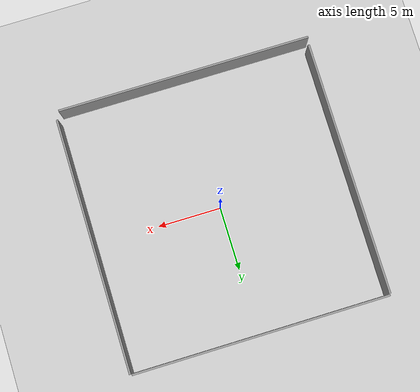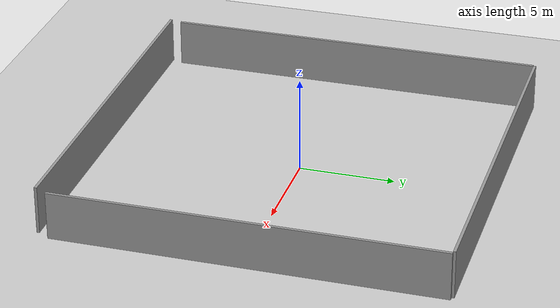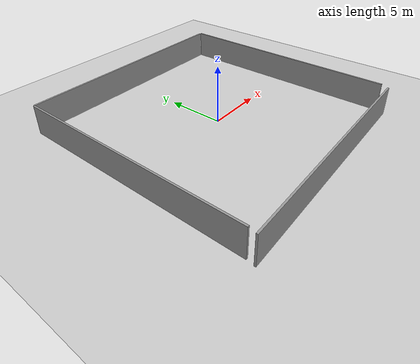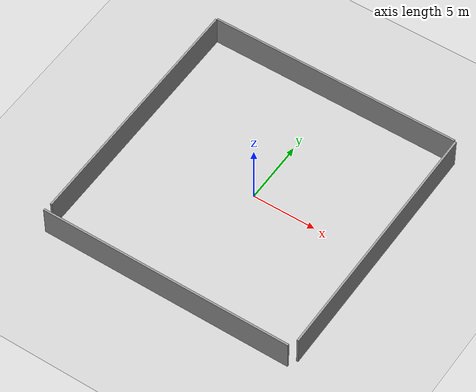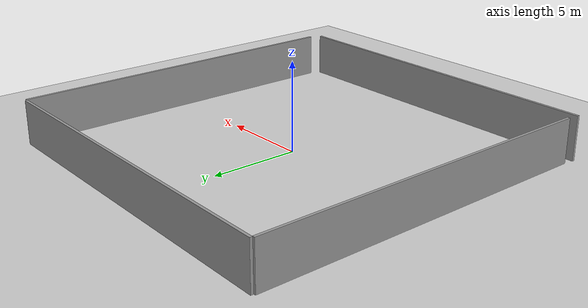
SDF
<sdf version="1.6">
 <world name="default">
  <light name="sun" type="directional">
   <pose>0 0 10 0 -0 0</pose>
   <diffuse>0.8 0.8 0.8 1</diffuse>
   <specular>0.2 0.2 0.2 1</specular>
   <attenuation>
    <range>1000</range>
    <constant>0.9</constant>
    <linear>0.01</linear>
    <quadratic>0.001</quadratic>
   </attenuation>
   <direction>-0.5 0.1 -0.9</direction>
  </light>
  <model name="ground_plane">
   <static>1</static>
   <link name="link">
    <collision name="collision">
     <geometry><plane><normal>0 0 1</normal><size>100 100</size></plane></geometry>
     <surface><friction><ode><mu>100</mu><mu2>50</mu2></ode></friction></surface>
    </collision>
    <visual name="visual">
     <cast_shadows>0</cast_shadows>
     <geometry><plane><normal>0 0 1</normal><size>100 100</size></plane></geometry>
     <material>
      <script><uri>file://media/materials/scripts/gazebo.material</uri><name>Gazebo/Grey</name></script>
     </material>
    </visual>
   </link>
  </model>
  <gravity>0 0 -9.8</gravity>
  <magnetic_field>6e-06 2.3e-05 -4.2e-05</magnetic_field>
  <atmosphere type="adiabatic"/>
  <physics name="default_physics" default="0" type="ode">
   <max_step_size>0.001</max_step_size>
   <real_time_factor>1</real_time_factor>
   <real_time_update_rate>1000</real_time_update_rate>
  </physics>
  <scene><ambient>0.4 0.4 0.4 1</ambient><background>0.7 0.7 0.7 1</background><shadows>1</shadows></scene>
  <audio><device>default</device></audio>
  <spherical_coordinates>
   <surface_model>EARTH_WGS84</surface_model>
   <latitude_deg>0</latitude_deg>
   <longitude_deg>0</longitude_deg>
   <elevation>0</elevation>
   <heading_deg>0</heading_deg>
  </spherical_coordinates>
  <model name="Untitled_0">
   <link name="Wall_0">
    <pose>-0.077665 0 -0 0 -0 0</pose>
    <inertial>
     <inertia><ixx>0</ixx><ixy>0</ixy><ixz>0</ixz><iyy>0</iyy><iyz>0</iyz><izz>0</izz></inertia>
     <mass>0</mass>
    </inertial>
    <visual name="Wall_0_Visual">
     <pose>0 0 1.25 0 -0 0</pose>
     <geometry><box><size>19.9376 0.15 2.5</size></box></geometry>
     <material>
      <script><uri>file://media/materials/scripts/gazebo.material</uri><name>Gazebo/Grey</name></script>
      <ambient>1 1 1 1</ambient>
     </material>
     <meta><layer>0</layer></meta>
    </visual>
    <collision name="Wall_0_Collision">
     <pose>0 0 1.25 0 -0 0</pose>
     <geometry><box><size>19.9376 0.15 2.5</size></box></geometry>
     <surface>
      <friction>
       <ode><mu>1</mu><mu2>1</mu2><fdir1>0 0 0</fdir1><slip1>0</slip1><slip2>0</slip2></ode>
       <torsional>
        <coefficient>1</coefficient>
        <patch_radius>0</patch_radius>
        <surface_radius>0</surface_radius>
        <use_patch_radius>1</use_patch_radius>
        <ode><slip>0</slip></ode>
       </torsional>
      </friction>
      <bounce><restitution_coefficient>0</restitution_coefficient><threshold>1e+06</threshold></bounce>
      <contact>
       <collide_without_contact>0</collide_without_contact>
       <collide_without_contact_bitmask>1</collide_without_contact_bitmask>
       <collide_bitmask>1</collide_bitmask>
       <ode>
        <soft_cfm>0</soft_cfm>
        <soft_erp>0.2</soft_erp>
        <kp>1e+13</kp>
        <kd>1</kd>
        <max_vel>0.01</max_vel>
        <min_depth>0</min_depth>
       </ode>
       <bullet>
        <split_impulse>1</split_impulse>
        <split_impulse_penetration_threshold>-0.01</split_impulse_penetration_threshold>
        <soft_cfm>0</soft_cfm>
        <soft_erp>0.2</soft_erp>
        <kp>1e+13</kp>
        <kd>1</kd>
       </bullet>
      </contact>
     </surface>
    </collision>
   </link>
   <static>1</static>
   <pose>0.019526 10.2076 0 0 -0 0</pose>
  </model>
  <model name="Untitled_0_clone">
   <link name="Wall_0">
    <pose>-0.077665 0 -0 0 -0 0</pose>
    <inertial>
     <inertia><ixx>0</ixx><ixy>0</ixy><ixz>0</ixz><iyy>0</iyy><iyz>0</iyz><izz>0</izz></inertia>
     <mass>0</mass>
    </inertial>
    <visual name="Wall_0_Visual">
     <pose>0 0 1.25 0 -0 0</pose>
     <geometry><box><size>19.9376 0.15 2.5</size></box></geometry>
     <material>
      <script><uri>file://media/materials/scripts/gazebo.material</uri><name>Gazebo/Grey</name></script>
      <ambient>1 1 1 1</ambient>
     </material>
     <meta><layer>0</layer></meta>
    </visual>
    <collision name="Wall_0_Collision">
     <pose>0 0 1.25 0 -0 0</pose>
     <geometry><box><size>19.9376 0.15 2.5</size></box></geometry>
     <surface>
      <friction>
       <ode><mu>1</mu><mu2>1</mu2><fdir1>0 0 0</fdir1><slip1>0</slip1><slip2>0</slip2></ode>
       <torsional>
        <coefficient>1</coefficient>
        <patch_radius>0</patch_radius>
        <surface_radius>0</surface_radius>
        <use_patch_radius>1</use_patch_radius>
        <ode><slip>0</slip></ode>
       </torsional>
      </friction>
      <bounce><restitution_coefficient>0</restitution_coefficient><threshold>1e+06</threshold></bounce>
      <contact>
       <collide_without_contact>0</collide_without_contact>
       <collide_without_contact_bitmask>1</collide_without_contact_bitmask>
       <collide_bitmask>1</collide_bitmask>
       <ode>
        <soft_cfm>0</soft_cfm>
        <soft_erp>0.2</soft_erp>
        <kp>1e+13</kp>
        <kd>1</kd>
        <max_vel>0.01</max_vel>
        <min_depth>0</min_depth>
       </ode>
       <bullet>
        <split_impulse>1</split_impulse>
        <split_impulse_penetration_threshold>-0.01</split_impulse_penetration_threshold>
        <soft_cfm>0</soft_cfm>
        <soft_erp>0.2</soft_erp>
        <kp>1e+13</kp>
        <kd>1</kd>
       </bullet>
      </contact>
     </surface>
    </collision>
   </link>
   <static>1</static>
   <pose>-0.179489 -10.4272 0 0 -0 0</pose>
  </model>
  <model name="Untitled_0_clone_0">
   <link name="Wall_0">
    <pose>-0.077665 0 -0 0 -0 0</pose>
    <inertial>
     <inertia><ixx>0</ixx><ixy>0</ixy><ixz>0</ixz><iyy>0</iyy><iyz>0</iyz><izz>0</izz></inertia>
     <mass>0</mass>
    </inertial>
    <visual name="Wall_0_Visual">
     <pose>0 0 1.25 0 -0 0</pose>
     <geometry><box><size>19.9376 0.15 2.5</size></box></geometry>
     <material>
      <script><uri>file://media/materials/scripts/gazebo.material</uri><name>Gazebo/Grey</name></script>
      <ambient>1 1 1 1</ambient>
     </material>
     <meta><layer>0</layer></meta>
    </visual>
    <collision name="Wall_0_Collision">
     <pose>0 0 1.25 0 -0 0</pose>
     <geometry><box><size>19.9376 0.15 2.5</size></box></geometry>
     <surface>
      <friction>
       <ode><mu>1</mu><mu2>1</mu2><fdir1>0 0 0</fdir1><slip1>0</slip1><slip2>0</slip2></ode>
       <torsional>
        <coefficient>1</coefficient>
        <patch_radius>0</patch_radius>
        <surface_radius>0</surface_radius>
        <use_patch_radius>1</use_patch_radius>
        <ode><slip>0</slip></ode>
       </torsional>
      </friction>
      <bounce><restitution_coefficient>0</restitution_coefficient><threshold>1e+06</threshold></bounce>
      <contact>
       <collide_without_contact>0</collide_without_contact>
       <collide_without_contact_bitmask>1</collide_without_contact_bitmask>
       <collide_bitmask>1</collide_bitmask>
       <ode>
        <soft_cfm>0</soft_cfm>
        <soft_erp>0.2</soft_erp>
        <kp>1e+13</kp>
        <kd>1</kd>
        <max_vel>0.01</max_vel>
        <min_depth>0</min_depth>
       </ode>
       <bullet>
        <split_impulse>1</split_impulse>
        <split_impulse_penetration_threshold>-0.01</split_impulse_penetration_threshold>
        <soft_cfm>0</soft_cfm>
        <soft_erp>0.2</soft_erp>
        <kp>1e+13</kp>
        <kd>1</kd>
       </bullet>
      </contact>
     </surface>
    </collision>
   </link>
   <static>1</static>
   <pose>-10.0638 0.233625 0 0 -0 1.57</pose>
  </model>
  <model name="Untitled_0_clone_1">
   <link name="Wall_0">
    <pose>-0.077665 0 -0 0 -0 0</pose>
    <inertial>
     <inertia><ixx>0</ixx><ixy>0</ixy><ixz>0</ixz><iyy>0</iyy><iyz>0</iyz><izz>0</izz></inertia>
     <mass>0</mass>
    </inertial>
    <visual name="Wall_0_Visual">
     <pose>0 0 1.25 0 -0 0</pose>
     <geometry><box><size>19.9376 0.15 2.5</size></box></geometry>
     <material>
      <script><uri>file://media/materials/scripts/gazebo.material</uri><name>Gazebo/Grey</name></script>
      <ambient>1 1 1 1</ambient>
     </material>
     <meta><layer>0</layer></meta>
    </visual>
    <collision name="Wall_0_Collision">
     <pose>0 0 1.25 0 -0 0</pose>
     <geometry><box><size>19.9376 0.15 2.5</size></box></geometry>
     <surface>
      <friction>
       <ode><mu>1</mu><mu2>1</mu2><fdir1>0 0 0</fdir1><slip1>0</slip1><slip2>0</slip2></ode>
       <torsional>
        <coefficient>1</coefficient>
        <patch_radius>0</patch_radius>
        <surface_radius>0</surface_radius>
        <use_patch_radius>1</use_patch_radius>
        <ode><slip>0</slip></ode>
       </torsional>
      </friction>
      <bounce><restitution_coefficient>0</restitution_coefficient><threshold>1e+06</threshold></bounce>
      <contact>
       <collide_without_contact>0</collide_without_contact>
       <collide_without_contact_bitmask>1</collide_without_contact_bitmask>
       <collide_bitmask>1</collide_bitmask>
       <ode>
        <soft_cfm>0</soft_cfm>
        <soft_erp>0.2</soft_erp>
        <kp>1e+13</kp>
        <kd>1</kd>
        <max_vel>0.01</max_vel>
        <min_depth>0</min_depth>
       </ode>
       <bullet>
        <split_impulse>1</split_impulse>
        <split_impulse_penetration_threshold>-0.01</split_impulse_penetration_threshold>
        <soft_cfm>0</soft_cfm>
        <soft_erp>0.2</soft_erp>
        <kp>1e+13</kp>
        <kd>1</kd>
       </bullet>
      </contact>
     </surface>
    </collision>
   </link>
   <static>1</static>
   <pose>10.0258 0.262557 0 0 -0 1.57</pose>
  </model>
 </world>
</sdf>
